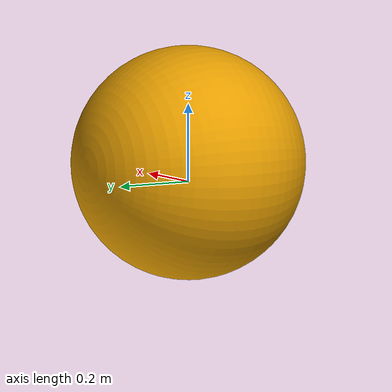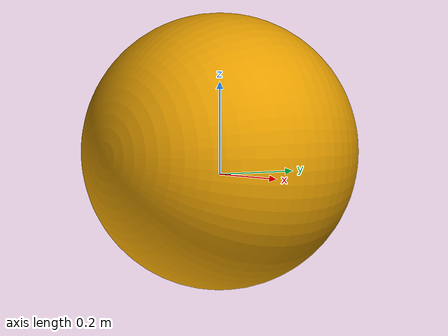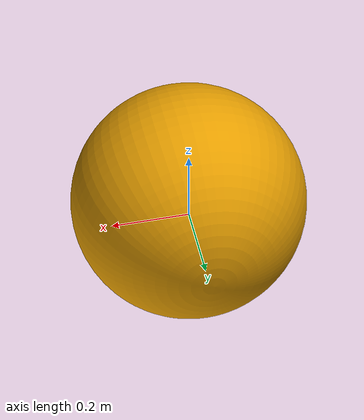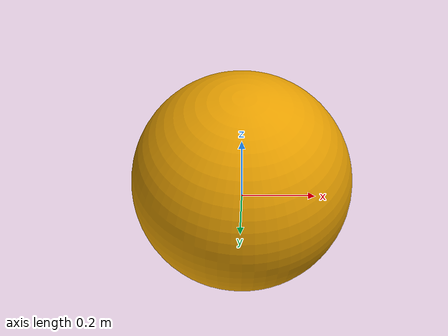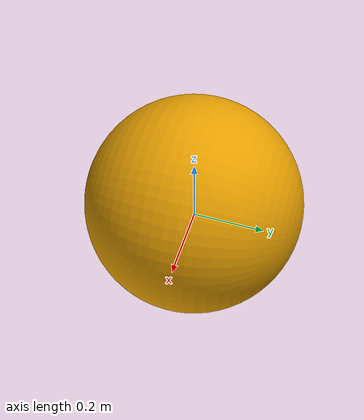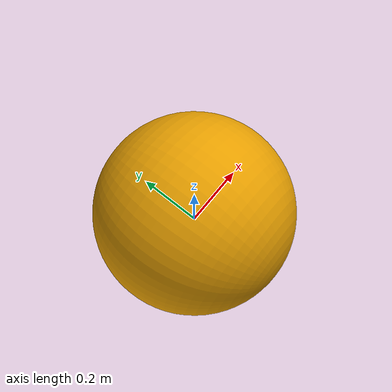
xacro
<?xml version="1.0"?>

<robot name="buoy">
  <link name="link">
    <visual>
      <origin rpy="0 0 0" xyz="0 0 0.05" />
      <geometry>
        <mesh filename="package://usv_sim/meshes/buoy/orange.obj" scale="1 1 1" />
      </geometry>
    </visual>
    <inertial>
      <origin rpy="0 0 0" xyz="0 0 0" />
      <mass value="5.0" />
      <inertia ixx="1" ixy="0.0" ixz="0.0" iyy="1" iyz="0" izz="1" />
    </inertial>
    <collision>
      <origin rpy="0 0 0" xyz="0 0 0.05" />
      <geometry>
        <mesh filename="package://usv_sim/meshes/buoy/orange_collis.obj" scale="1 1 1" />
      </geometry>
    </collision>
    <buoyancy>
      <compensation>10</compensation>
      <origin xyz="0 0 0.05" />
      <limit radius="0.25" />
      <windVelocity>none</windVelocity>
      <damping rpy="20 20 20" xyz="100 100 50" />
      <waterVelocity>none</waterVelocity>
    </buoyancy>
  </link>
</robot>
